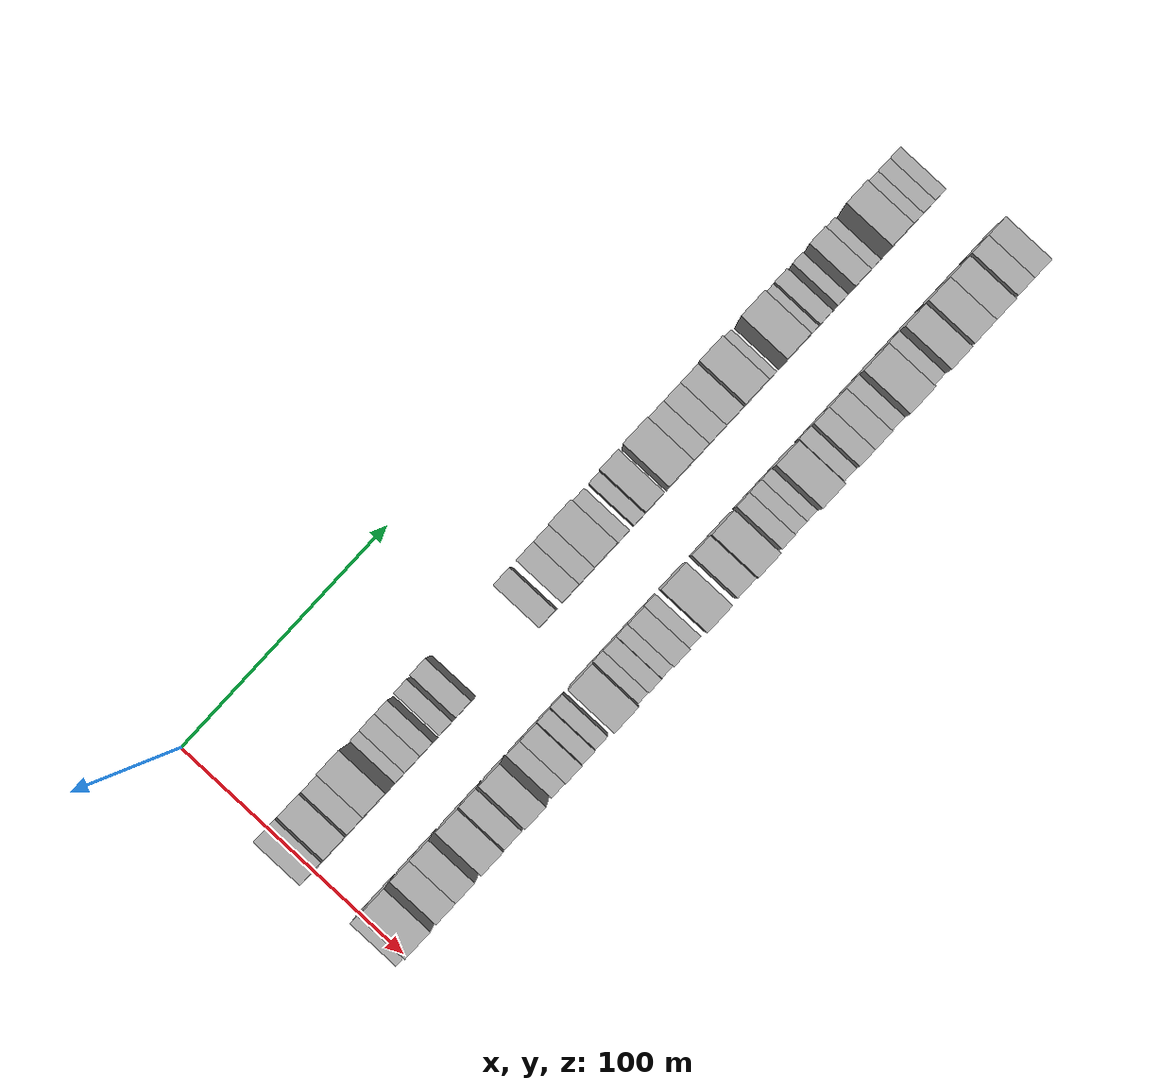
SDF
<sdf version="1.6">
 <world name="default">
  <model name="building_36">
   <static>1</static>
   <pose>50.0000 5.2989 0 0.000000 0.000000 0.000000</pose>
   <link name="link">
    <pose>0 0 12.00 0 0 0</pose>
    <collision name="collision"><geometry><box><size>20.0000 9.8693 24.0000</size></box></geometry></collision>
    <visual name="visual">
     <cast_shadows>0</cast_shadows>
     <geometry><box><size>20.0000 9.8693 24.0000</size></box></geometry>
     <material>
      <script>
       <uri>model://HANNAS_wall/materials/scripts</uri>
       <uri>model://HANNAS_wall/materials/textures</uri>
       <name>vrc/HANNAS_wall</name>
      </script>
     </material>
    </visual>
   </link>
  </model>
  <model name="building_37">
   <static>1</static>
   <pose>50.0000 15.3436 0 0.000000 0.000000 0.000000</pose>
   <link name="link">
    <pose>0 0 10.50 0 0 0</pose>
    <collision name="collision"><geometry><box><size>20.0000 10.2202 21.0000</size></box></geometry></collision>
    <visual name="visual">
     <cast_shadows>0</cast_shadows>
     <geometry><box><size>20.0000 10.2202 21.0000</size></box></geometry>
     <material>
      <script>
       <uri>model://HANNAS_wall/materials/scripts</uri>
       <uri>model://HANNAS_wall/materials/textures</uri>
       <name>vrc/HANNAS_wall</name>
      </script>
     </material>
    </visual>
   </link>
  </model>
  <model name="building_38">
   <static>1</static>
   <pose>50.0000 24.9056 0 0.000000 0.000000 0.000000</pose>
   <link name="link">
    <pose>0 0 9.00 0 0 0</pose>
    <collision name="collision"><geometry><box><size>20.0000 8.9036 18.0000</size></box></geometry></collision>
    <visual name="visual">
     <cast_shadows>0</cast_shadows>
     <geometry><box><size>20.0000 8.9036 18.0000</size></box></geometry>
     <material>
      <script>
       <uri>model://HANNAS_wall/materials/scripts</uri>
       <uri>model://HANNAS_wall/materials/textures</uri>
       <name>vrc/HANNAS_wall</name>
      </script>
     </material>
    </visual>
   </link>
  </model>
  <model name="building_39">
   <static>1</static>
   <pose>50.0000 34.5835 0 0.000000 0.000000 0.000000</pose>
   <link name="link">
    <pose>0 0 12.00 0 0 0</pose>
    <collision name="collision"><geometry><box><size>20.0000 10.4523 24.0000</size></box></geometry></collision>
    <visual name="visual">
     <cast_shadows>0</cast_shadows>
     <geometry><box><size>20.0000 10.4523 24.0000</size></box></geometry>
     <material>
      <script>
       <uri>model://HANNAS_wall/materials/scripts</uri>
       <uri>model://HANNAS_wall/materials/textures</uri>
       <name>vrc/HANNAS_wall</name>
      </script>
     </material>
    </visual>
   </link>
  </model>
  <model name="building_40">
   <static>1</static>
   <pose>50.0000 44.3643 0 0.000000 0.000000 0.000000</pose>
   <link name="link">
    <pose>0 0 6.00 0 0 0</pose>
    <collision name="collision"><geometry><box><size>20.0000 5.1094 12.0000</size></box></geometry></collision>
    <visual name="visual">
     <cast_shadows>0</cast_shadows>
     <geometry><box><size>20.0000 5.1094 12.0000</size></box></geometry>
     <material>
      <script>
       <uri>model://HANNAS_wall/materials/scripts</uri>
       <uri>model://HANNAS_wall/materials/textures</uri>
       <name>vrc/HANNAS_wall</name>
      </script>
     </material>
    </visual>
   </link>
  </model>
  <model name="building_41">
   <static>1</static>
   <pose>50.0000 50.5406 0 0.000000 0.000000 0.000000</pose>
   <link name="link">
    <pose>0 0 7.50 0 0 0</pose>
    <collision name="collision"><geometry><box><size>20.0000 7.2432 15.0000</size></box></geometry></collision>
    <visual name="visual">
     <cast_shadows>0</cast_shadows>
     <geometry><box><size>20.0000 7.2432 15.0000</size></box></geometry>
     <material>
      <script>
       <uri>model://HANNAS_wall/materials/scripts</uri>
       <uri>model://HANNAS_wall/materials/textures</uri>
       <name>vrc/HANNAS_wall</name>
      </script>
     </material>
    </visual>
   </link>
  </model>
  <model name="building_42">
   <static>1</static>
   <pose>50.0000 57.1868 0 0.000000 0.000000 0.000000</pose>
   <link name="link">
    <pose>0 0 7.50 0 0 0</pose>
    <collision name="collision"><geometry><box><size>20.0000 6.0493 15.0000</size></box></geometry></collision>
    <visual name="visual">
     <cast_shadows>0</cast_shadows>
     <geometry><box><size>20.0000 6.0493 15.0000</size></box></geometry>
     <material>
      <script>
       <uri>model://HANNAS_wall/materials/scripts</uri>
       <uri>model://HANNAS_wall/materials/textures</uri>
       <name>vrc/HANNAS_wall</name>
      </script>
     </material>
    </visual>
   </link>
  </model>
  <model name="building_43">
   <static>1</static>
   <pose>50.0000 66.2984 0 0.000000 0.000000 0.000000</pose>
   <link name="link">
    <pose>0 0 7.50 0 0 0</pose>
    <collision name="collision"><geometry><box><size>20.0000 6.1739 15.0000</size></box></geometry></collision>
    <visual name="visual">
     <cast_shadows>0</cast_shadows>
     <geometry><box><size>20.0000 6.1739 15.0000</size></box></geometry>
     <material>
      <script>
       <uri>model://HANNAS_wall/materials/scripts</uri>
       <uri>model://HANNAS_wall/materials/textures</uri>
       <name>vrc/HANNAS_wall</name>
      </script>
     </material>
    </visual>
   </link>
  </model>
  <model name="building_44">
   <static>1</static>
   <pose>50.0000 75.0308 0 0.000000 0.000000 0.000000</pose>
   <link name="link">
    <pose>0 0 9.00 0 0 0</pose>
    <collision name="collision"><geometry><box><size>20.0000 7.2908 18.0000</size></box></geometry></collision>
    <visual name="visual">
     <cast_shadows>0</cast_shadows>
     <geometry><box><size>20.0000 7.2908 18.0000</size></box></geometry>
     <material>
      <script>
       <uri>model://HANNAS_wall/materials/scripts</uri>
       <uri>model://HANNAS_wall/materials/textures</uri>
       <name>vrc/HANNAS_wall</name>
      </script>
     </material>
    </visual>
   </link>
  </model>
  <model name="building_45">
   <static>1</static>
   <pose>50.0000 114.2790 0 0.000000 0.000000 0.000000</pose>
   <link name="link">
    <pose>0 0 9.00 0 0 0</pose>
    <collision name="collision"><geometry><box><size>20.0000 7.7352 18.0000</size></box></geometry></collision>
    <visual name="visual">
     <cast_shadows>0</cast_shadows>
     <geometry><box><size>20.0000 7.7352 18.0000</size></box></geometry>
     <material>
      <script>
       <uri>model://HANNAS_wall/materials/scripts</uri>
       <uri>model://HANNAS_wall/materials/textures</uri>
       <name>vrc/HANNAS_wall</name>
      </script>
     </material>
    </visual>
   </link>
  </model>
  <model name="building_46">
   <static>1</static>
   <pose>50.0000 125.1960 0 0.000000 0.000000 0.000000</pose>
   <link name="link">
    <pose>0 0 9.00 0 0 0</pose>
    <collision name="collision"><geometry><box><size>20.0000 8.0990 18.0000</size></box></geometry></collision>
    <visual name="visual">
     <cast_shadows>0</cast_shadows>
     <geometry><box><size>20.0000 8.0990 18.0000</size></box></geometry>
     <material>
      <script>
       <uri>model://HANNAS_wall/materials/scripts</uri>
       <uri>model://HANNAS_wall/materials/textures</uri>
       <name>vrc/HANNAS_wall</name>
      </script>
     </material>
    </visual>
   </link>
  </model>
  <model name="building_47">
   <static>1</static>
   <pose>50.0000 132.9051 0 0.000000 0.000000 0.000000</pose>
   <link name="link">
    <pose>0 0 9.00 0 0 0</pose>
    <collision name="collision"><geometry><box><size>20.0000 7.3190 18.0000</size></box></geometry></collision>
    <visual name="visual">
     <cast_shadows>0</cast_shadows>
     <geometry><box><size>20.0000 7.3190 18.0000</size></box></geometry>
     <material>
      <script>
       <uri>model://HANNAS_wall/materials/scripts</uri>
       <uri>model://HANNAS_wall/materials/textures</uri>
       <name>vrc/HANNAS_wall</name>
      </script>
     </material>
    </visual>
   </link>
  </model>
  <model name="building_48">
   <static>1</static>
   <pose>50.0000 141.8747 0 0.000000 0.000000 0.000000</pose>
   <link name="link">
    <pose>0 0 12.00 0 0 0</pose>
    <collision name="collision"><geometry><box><size>20.0000 10.6203 24.0000</size></box></geometry></collision>
    <visual name="visual">
     <cast_shadows>0</cast_shadows>
     <geometry><box><size>20.0000 10.6203 24.0000</size></box></geometry>
     <material>
      <script>
       <uri>model://HANNAS_wall/materials/scripts</uri>
       <uri>model://HANNAS_wall/materials/textures</uri>
       <name>vrc/HANNAS_wall</name>
      </script>
     </material>
    </visual>
   </link>
  </model>
  <model name="building_49">
   <static>1</static>
   <pose>50.0000 150.0842 0 0.000000 0.000000 0.000000</pose>
   <link name="link">
    <pose>0 0 6.00 0 0 0</pose>
    <collision name="collision"><geometry><box><size>20.0000 5.7988 12.0000</size></box></geometry></collision>
    <visual name="visual">
     <cast_shadows>0</cast_shadows>
     <geometry><box><size>20.0000 5.7988 12.0000</size></box></geometry>
     <material>
      <script>
       <uri>model://HANNAS_wall/materials/scripts</uri>
       <uri>model://HANNAS_wall/materials/textures</uri>
       <name>vrc/HANNAS_wall</name>
      </script>
     </material>
    </visual>
   </link>
  </model>
  <model name="building_50">
   <static>1</static>
   <pose>50.0000 157.6282 0 0.000000 0.000000 0.000000</pose>
   <link name="link">
    <pose>0 0 6.00 0 0 0</pose>
    <collision name="collision"><geometry><box><size>20.0000 5.2891 12.0000</size></box></geometry></collision>
    <visual name="visual">
     <cast_shadows>0</cast_shadows>
     <geometry><box><size>20.0000 5.2891 12.0000</size></box></geometry>
     <material>
      <script>
       <uri>model://HANNAS_wall/materials/scripts</uri>
       <uri>model://HANNAS_wall/materials/textures</uri>
       <name>vrc/HANNAS_wall</name>
      </script>
     </material>
    </visual>
   </link>
  </model>
  <model name="building_51">
   <static>1</static>
   <pose>50.0000 164.6378 0 0.000000 0.000000 0.000000</pose>
   <link name="link">
    <pose>0 0 10.50 0 0 0</pose>
    <collision name="collision"><geometry><box><size>20.0000 8.7301 21.0000</size></box></geometry></collision>
    <visual name="visual">
     <cast_shadows>0</cast_shadows>
     <geometry><box><size>20.0000 8.7301 21.0000</size></box></geometry>
     <material>
      <script>
       <uri>model://HANNAS_wall/materials/scripts</uri>
       <uri>model://HANNAS_wall/materials/textures</uri>
       <name>vrc/HANNAS_wall</name>
      </script>
     </material>
    </visual>
   </link>
  </model>
  <model name="building_52">
   <static>1</static>
   <pose>50.0000 176.7647 0 0.000000 0.000000 0.000000</pose>
   <link name="link">
    <pose>0 0 12.00 0 0 0</pose>
    <collision name="collision"><geometry><box><size>20.0000 11.5238 24.0000</size></box></geometry></collision>
    <visual name="visual">
     <cast_shadows>0</cast_shadows>
     <geometry><box><size>20.0000 11.5238 24.0000</size></box></geometry>
     <material>
      <script>
       <uri>model://HANNAS_wall/materials/scripts</uri>
       <uri>model://HANNAS_wall/materials/textures</uri>
       <name>vrc/HANNAS_wall</name>
      </script>
     </material>
    </visual>
   </link>
  </model>
  <model name="building_53">
   <static>1</static>
   <pose>50.0000 186.3840 0 0.000000 0.000000 0.000000</pose>
   <link name="link">
    <pose>0 0 9.00 0 0 0</pose>
    <collision name="collision"><geometry><box><size>20.0000 7.7149 18.0000</size></box></geometry></collision>
    <visual name="visual">
     <cast_shadows>0</cast_shadows>
     <geometry><box><size>20.0000 7.7149 18.0000</size></box></geometry>
     <material>
      <script>
       <uri>model://HANNAS_wall/materials/scripts</uri>
       <uri>model://HANNAS_wall/materials/textures</uri>
       <name>vrc/HANNAS_wall</name>
      </script>
     </material>
    </visual>
   </link>
  </model>
  <model name="building_54">
   <static>1</static>
   <pose>50.0000 194.2347 0 0.000000 0.000000 0.000000</pose>
   <link name="link">
    <pose>0 0 9.00 0 0 0</pose>
    <collision name="collision"><geometry><box><size>20.0000 7.9865 18.0000</size></box></geometry></collision>
    <visual name="visual">
     <cast_shadows>0</cast_shadows>
     <geometry><box><size>20.0000 7.9865 18.0000</size></box></geometry>
     <material>
      <script>
       <uri>model://HANNAS_wall/materials/scripts</uri>
       <uri>model://HANNAS_wall/materials/textures</uri>
       <name>vrc/HANNAS_wall</name>
      </script>
     </material>
    </visual>
   </link>
  </model>
  <model name="building_55">
   <static>1</static>
   <pose>50.0000 202.3265 0 0.000000 0.000000 0.000000</pose>
   <link name="link">
    <pose>0 0 9.00 0 0 0</pose>
    <collision name="collision"><geometry><box><size>20.0000 8.1970 18.0000</size></box></geometry></collision>
    <visual name="visual">
     <cast_shadows>0</cast_shadows>
     <geometry><box><size>20.0000 8.1970 18.0000</size></box></geometry>
     <material>
      <script>
       <uri>model://HANNAS_wall/materials/scripts</uri>
       <uri>model://HANNAS_wall/materials/textures</uri>
       <name>vrc/HANNAS_wall</name>
      </script>
     </material>
    </visual>
   </link>
  </model>
  <model name="building_56">
   <static>1</static>
   <pose>50.0000 211.8635 0 0.000000 0.000000 0.000000</pose>
   <link name="link">
    <pose>0 0 12.00 0 0 0</pose>
    <collision name="collision"><geometry><box><size>20.0000 10.8770 24.0000</size></box></geometry></collision>
    <visual name="visual">
     <cast_shadows>0</cast_shadows>
     <geometry><box><size>20.0000 10.8770 24.0000</size></box></geometry>
     <material>
      <script>
       <uri>model://HANNAS_wall/materials/scripts</uri>
       <uri>model://HANNAS_wall/materials/textures</uri>
       <name>vrc/HANNAS_wall</name>
      </script>
     </material>
    </visual>
   </link>
  </model>
  <model name="building_57">
   <static>1</static>
   <pose>50.0000 219.9819 0 0.000000 0.000000 0.000000</pose>
   <link name="link">
    <pose>0 0 6.00 0 0 0</pose>
    <collision name="collision"><geometry><box><size>20.0000 5.3598 12.0000</size></box></geometry></collision>
    <visual name="visual">
     <cast_shadows>0</cast_shadows>
     <geometry><box><size>20.0000 5.3598 12.0000</size></box></geometry>
     <material>
      <script>
       <uri>model://HANNAS_wall/materials/scripts</uri>
       <uri>model://HANNAS_wall/materials/textures</uri>
       <name>vrc/HANNAS_wall</name>
      </script>
     </material>
    </visual>
   </link>
  </model>
  <model name="building_58">
   <static>1</static>
   <pose>50.0000 231.2305 0 0.000000 0.000000 0.000000</pose>
   <link name="link">
    <pose>0 0 12.00 0 0 0</pose>
    <collision name="collision"><geometry><box><size>20.0000 11.1373 24.0000</size></box></geometry></collision>
    <visual name="visual">
     <cast_shadows>0</cast_shadows>
     <geometry><box><size>20.0000 11.1373 24.0000</size></box></geometry>
     <material>
      <script>
       <uri>model://HANNAS_wall/materials/scripts</uri>
       <uri>model://HANNAS_wall/materials/textures</uri>
       <name>vrc/HANNAS_wall</name>
      </script>
     </material>
    </visual>
   </link>
  </model>
  <model name="building_59">
   <static>1</static>
   <pose>50.0000 239.7398 0 0.000000 0.000000 0.000000</pose>
   <link name="link">
    <pose>0 0 6.00 0 0 0</pose>
    <collision name="collision"><geometry><box><size>20.0000 5.8813 12.0000</size></box></geometry></collision>
    <visual name="visual">
     <cast_shadows>0</cast_shadows>
     <geometry><box><size>20.0000 5.8813 12.0000</size></box></geometry>
     <material>
      <script>
       <uri>model://HANNAS_wall/materials/scripts</uri>
       <uri>model://HANNAS_wall/materials/textures</uri>
       <name>vrc/HANNAS_wall</name>
      </script>
     </material>
    </visual>
   </link>
  </model>
  <model name="building_60">
   <static>1</static>
   <pose>50.0000 245.6837 0 0.000000 0.000000 0.000000</pose>
   <link name="link">
    <pose>0 0 7.50 0 0 0</pose>
    <collision name="collision"><geometry><box><size>20.0000 6.0066 15.0000</size></box></geometry></collision>
    <visual name="visual">
     <cast_shadows>0</cast_shadows>
     <geometry><box><size>20.0000 6.0066 15.0000</size></box></geometry>
     <material>
      <script>
       <uri>model://HANNAS_wall/materials/scripts</uri>
       <uri>model://HANNAS_wall/materials/textures</uri>
       <name>vrc/HANNAS_wall</name>
      </script>
     </material>
    </visual>
   </link>
  </model>
  <model name="building_61">
   <static>1</static>
   <pose>50.0000 254.1196 0 0.000000 0.000000 0.000000</pose>
   <link name="link">
    <pose>0 0 6.00 0 0 0</pose>
    <collision name="collision"><geometry><box><size>20.0000 4.8652 12.0000</size></box></geometry></collision>
    <visual name="visual">
     <cast_shadows>0</cast_shadows>
     <geometry><box><size>20.0000 4.8652 12.0000</size></box></geometry>
     <material>
      <script>
       <uri>model://HANNAS_wall/materials/scripts</uri>
       <uri>model://HANNAS_wall/materials/textures</uri>
       <name>vrc/HANNAS_wall</name>
      </script>
     </material>
    </visual>
   </link>
  </model>
  <model name="building_62">
   <static>1</static>
   <pose>50.0000 262.2851 0 0.000000 0.000000 0.000000</pose>
   <link name="link">
    <pose>0 0 9.00 0 0 0</pose>
    <collision name="collision"><geometry><box><size>20.0000 7.4657 18.0000</size></box></geometry></collision>
    <visual name="visual">
     <cast_shadows>0</cast_shadows>
     <geometry><box><size>20.0000 7.4657 18.0000</size></box></geometry>
     <material>
      <script>
       <uri>model://HANNAS_wall/materials/scripts</uri>
       <uri>model://HANNAS_wall/materials/textures</uri>
       <name>vrc/HANNAS_wall</name>
      </script>
     </material>
    </visual>
   </link>
  </model>
  <model name="building_63">
   <static>1</static>
   <pose>50.0000 269.0076 0 0.000000 0.000000 0.000000</pose>
   <link name="link">
    <pose>0 0 6.00 0 0 0</pose>
    <collision name="collision"><geometry><box><size>20.0000 5.9794 12.0000</size></box></geometry></collision>
    <visual name="visual">
     <cast_shadows>0</cast_shadows>
     <geometry><box><size>20.0000 5.9794 12.0000</size></box></geometry>
     <material>
      <script>
       <uri>model://HANNAS_wall/materials/scripts</uri>
       <uri>model://HANNAS_wall/materials/textures</uri>
       <name>vrc/HANNAS_wall</name>
      </script>
     </material>
    </visual>
   </link>
  </model>
  <model name="building_64">
   <static>1</static>
   <pose>50.0000 279.9624 0 0.000000 0.000000 0.000000</pose>
   <link name="link">
    <pose>0 0 10.50 0 0 0</pose>
    <collision name="collision"><geometry><box><size>20.0000 9.9301 21.0000</size></box></geometry></collision>
    <visual name="visual">
     <cast_shadows>0</cast_shadows>
     <geometry><box><size>20.0000 9.9301 21.0000</size></box></geometry>
     <material>
      <script>
       <uri>model://HANNAS_wall/materials/scripts</uri>
       <uri>model://HANNAS_wall/materials/textures</uri>
       <name>vrc/HANNAS_wall</name>
      </script>
     </material>
    </visual>
   </link>
  </model>
  <model name="building_65">
   <static>1</static>
   <pose>50.0000 289.5645 0 0.000000 0.000000 0.000000</pose>
   <link name="link">
    <pose>0 0 6.00 0 0 0</pose>
    <collision name="collision"><geometry><box><size>20.0000 5.2741 12.0000</size></box></geometry></collision>
    <visual name="visual">
     <cast_shadows>0</cast_shadows>
     <geometry><box><size>20.0000 5.2741 12.0000</size></box></geometry>
     <material>
      <script>
       <uri>model://HANNAS_wall/materials/scripts</uri>
       <uri>model://HANNAS_wall/materials/textures</uri>
       <name>vrc/HANNAS_wall</name>
      </script>
     </material>
    </visual>
   </link>
  </model>
  <model name="building_66">
   <static>1</static>
   <pose>50.0000 295.0263 0 0.000000 0.000000 0.000000</pose>
   <link name="link">
    <pose>0 0 6.00 0 0 0</pose>
    <collision name="collision"><geometry><box><size>20.0000 5.6495 12.0000</size></box></geometry></collision>
    <visual name="visual">
     <cast_shadows>0</cast_shadows>
     <geometry><box><size>20.0000 5.6495 12.0000</size></box></geometry>
     <material>
      <script>
       <uri>model://HANNAS_wall/materials/scripts</uri>
       <uri>model://HANNAS_wall/materials/textures</uri>
       <name>vrc/HANNAS_wall</name>
      </script>
     </material>
    </visual>
   </link>
  </model>
  <model name="building_67">
   <static>1</static>
   <pose>50.0000 300.3409 0 0.000000 0.000000 0.000000</pose>
   <link name="link">
    <pose>0 0 6.00 0 0 0</pose>
    <collision name="collision"><geometry><box><size>20.0000 4.9796 12.0000</size></box></geometry></collision>
    <visual name="visual">
     <cast_shadows>0</cast_shadows>
     <geometry><box><size>20.0000 4.9796 12.0000</size></box></geometry>
     <material>
      <script>
       <uri>model://HANNAS_wall/materials/scripts</uri>
       <uri>model://HANNAS_wall/materials/textures</uri>
       <name>vrc/HANNAS_wall</name>
      </script>
     </material>
    </visual>
   </link>
  </model>
  <model name="building_99">
   <static>1</static>
   <pose>90.0000 2.6987 0 0.000000 0.000000 0.000000</pose>
   <link name="link">
    <pose>0 0 7.50 0 0 0</pose>
    <collision name="collision"><geometry><box><size>20.0000 6.0390 15.0000</size></box></geometry></collision>
    <visual name="visual">
     <cast_shadows>0</cast_shadows>
     <geometry><box><size>20.0000 6.0390 15.0000</size></box></geometry>
     <material>
      <script>
       <uri>model://HANNAS_wall/materials/scripts</uri>
       <uri>model://HANNAS_wall/materials/textures</uri>
       <name>vrc/HANNAS_wall</name>
      </script>
     </material>
    </visual>
   </link>
  </model>
  <model name="building_100">
   <static>1</static>
   <pose>90.0000 11.6508 0 0.000000 0.000000 0.000000</pose>
   <link name="link">
    <pose>0 0 12.00 0 0 0</pose>
    <collision name="collision"><geometry><box><size>20.0000 11.8654 24.0000</size></box></geometry></collision>
    <visual name="visual">
     <cast_shadows>0</cast_shadows>
     <geometry><box><size>20.0000 11.8654 24.0000</size></box></geometry>
     <material>
      <script>
       <uri>model://HANNAS_wall/materials/scripts</uri>
       <uri>model://HANNAS_wall/materials/textures</uri>
       <name>vrc/HANNAS_wall</name>
      </script>
     </material>
    </visual>
   </link>
  </model>
  <model name="building_101">
   <static>1</static>
   <pose>90.0000 24.1338 0 0.000000 0.000000 0.000000</pose>
   <link name="link">
    <pose>0 0 10.50 0 0 0</pose>
    <collision name="collision"><geometry><box><size>20.0000 9.1005 21.0000</size></box></geometry></collision>
    <visual name="visual">
     <cast_shadows>0</cast_shadows>
     <geometry><box><size>20.0000 9.1005 21.0000</size></box></geometry>
     <material>
      <script>
       <uri>model://HANNAS_wall/materials/scripts</uri>
       <uri>model://HANNAS_wall/materials/textures</uri>
       <name>vrc/HANNAS_wall</name>
      </script>
     </material>
    </visual>
   </link>
  </model>
  <model name="building_102">
   <static>1</static>
   <pose>90.0000 33.1468 0 0.000000 0.000000 0.000000</pose>
   <link name="link">
    <pose>0 0 10.50 0 0 0</pose>
    <collision name="collision"><geometry><box><size>20.0000 8.9257 21.0000</size></box></geometry></collision>
    <visual name="visual">
     <cast_shadows>0</cast_shadows>
     <geometry><box><size>20.0000 8.9257 21.0000</size></box></geometry>
     <material>
      <script>
       <uri>model://HANNAS_wall/materials/scripts</uri>
       <uri>model://HANNAS_wall/materials/textures</uri>
       <name>vrc/HANNAS_wall</name>
      </script>
     </material>
    </visual>
   </link>
  </model>
  <model name="building_103">
   <static>1</static>
   <pose>90.0000 45.8174 0 0.000000 0.000000 0.000000</pose>
   <link name="link">
    <pose>0 0 10.50 0 0 0</pose>
    <collision name="collision"><geometry><box><size>20.0000 10.4154 21.0000</size></box></geometry></collision>
    <visual name="visual">
     <cast_shadows>0</cast_shadows>
     <geometry><box><size>20.0000 10.4154 21.0000</size></box></geometry>
     <material>
      <script>
       <uri>model://HANNAS_wall/materials/scripts</uri>
       <uri>model://HANNAS_wall/materials/textures</uri>
       <name>vrc/HANNAS_wall</name>
      </script>
     </material>
    </visual>
   </link>
  </model>
  <model name="building_104">
   <static>1</static>
   <pose>90.0000 55.1356 0 0.000000 0.000000 0.000000</pose>
   <link name="link">
    <pose>0 0 9.00 0 0 0</pose>
    <collision name="collision"><geometry><box><size>20.0000 8.2211 18.0000</size></box></geometry></collision>
    <visual name="visual">
     <cast_shadows>0</cast_shadows>
     <geometry><box><size>20.0000 8.2211 18.0000</size></box></geometry>
     <material>
      <script>
       <uri>model://HANNAS_wall/materials/scripts</uri>
       <uri>model://HANNAS_wall/materials/textures</uri>
       <name>vrc/HANNAS_wall</name>
      </script>
     </material>
    </visual>
   </link>
  </model>
  <model name="building_105">
   <static>1</static>
   <pose>90.0000 66.1166 0 0.000000 0.000000 0.000000</pose>
   <link name="link">
    <pose>0 0 12.00 0 0 0</pose>
    <collision name="collision"><geometry><box><size>20.0000 9.7410 24.0000</size></box></geometry></collision>
    <visual name="visual">
     <cast_shadows>0</cast_shadows>
     <geometry><box><size>20.0000 9.7410 24.0000</size></box></geometry>
     <material>
      <script>
       <uri>model://HANNAS_wall/materials/scripts</uri>
       <uri>model://HANNAS_wall/materials/textures</uri>
       <name>vrc/HANNAS_wall</name>
      </script>
     </material>
    </visual>
   </link>
  </model>
  <model name="building_106">
   <static>1</static>
   <pose>90.0000 76.3858 0 0.000000 0.000000 0.000000</pose>
   <link name="link">
    <pose>0 0 7.50 0 0 0</pose>
    <collision name="collision"><geometry><box><size>20.0000 6.7973 15.0000</size></box></geometry></collision>
    <visual name="visual">
     <cast_shadows>0</cast_shadows>
     <geometry><box><size>20.0000 6.7973 15.0000</size></box></geometry>
     <material>
      <script>
       <uri>model://HANNAS_wall/materials/scripts</uri>
       <uri>model://HANNAS_wall/materials/textures</uri>
       <name>vrc/HANNAS_wall</name>
      </script>
     </material>
    </visual>
   </link>
  </model>
  <model name="building_107">
   <static>1</static>
   <pose>90.0000 83.6716 0 0.000000 0.000000 0.000000</pose>
   <link name="link">
    <pose>0 0 9.00 0 0 0</pose>
    <collision name="collision"><geometry><box><size>20.0000 7.7745 18.0000</size></box></geometry></collision>
    <visual name="visual">
     <cast_shadows>0</cast_shadows>
     <geometry><box><size>20.0000 7.7745 18.0000</size></box></geometry>
     <material>
      <script>
       <uri>model://HANNAS_wall/materials/scripts</uri>
       <uri>model://HANNAS_wall/materials/textures</uri>
       <name>vrc/HANNAS_wall</name>
      </script>
     </material>
    </visual>
   </link>
  </model>
  <model name="building_108">
   <static>1</static>
   <pose>90.0000 90.5907 0 0.000000 0.000000 0.000000</pose>
   <link name="link">
    <pose>0 0 7.50 0 0 0</pose>
    <collision name="collision"><geometry><box><size>20.0000 6.0637 15.0000</size></box></geometry></collision>
    <visual name="visual">
     <cast_shadows>0</cast_shadows>
     <geometry><box><size>20.0000 6.0637 15.0000</size></box></geometry>
     <material>
      <script>
       <uri>model://HANNAS_wall/materials/scripts</uri>
       <uri>model://HANNAS_wall/materials/textures</uri>
       <name>vrc/HANNAS_wall</name>
      </script>
     </material>
    </visual>
   </link>
  </model>
  <model name="building_109">
   <static>1</static>
   <pose>90.0000 96.5604 0 0.000000 0.000000 0.000000</pose>
   <link name="link">
    <pose>0 0 6.00 0 0 0</pose>
    <collision name="collision"><geometry><box><size>20.0000 5.8756 12.0000</size></box></geometry></collision>
    <visual name="visual">
     <cast_shadows>0</cast_shadows>
     <geometry><box><size>20.0000 5.8756 12.0000</size></box></geometry>
     <material>
      <script>
       <uri>model://HANNAS_wall/materials/scripts</uri>
       <uri>model://HANNAS_wall/materials/textures</uri>
       <name>vrc/HANNAS_wall</name>
      </script>
     </material>
    </visual>
   </link>
  </model>
  <model name="building_110">
   <static>1</static>
   <pose>90.0000 108.1608 0 0.000000 0.000000 0.000000</pose>
   <link name="link">
    <pose>0 0 12.00 0 0 0</pose>
    <collision name="collision"><geometry><box><size>20.0000 11.3252 24.0000</size></box></geometry></collision>
    <visual name="visual">
     <cast_shadows>0</cast_shadows>
     <geometry><box><size>20.0000 11.3252 24.0000</size></box></geometry>
     <material>
      <script>
       <uri>model://HANNAS_wall/materials/scripts</uri>
       <uri>model://HANNAS_wall/materials/textures</uri>
       <name>vrc/HANNAS_wall</name>
      </script>
     </material>
    </visual>
   </link>
  </model>
  <model name="building_111">
   <static>1</static>
   <pose>90.0000 116.3234 0 0.000000 0.000000 0.000000</pose>
   <link name="link">
    <pose>0 0 6.00 0 0 0</pose>
    <collision name="collision"><geometry><box><size>20.0000 5.0000 12.0000</size></box></geometry></collision>
    <visual name="visual">
     <cast_shadows>0</cast_shadows>
     <geometry><box><size>20.0000 5.0000 12.0000</size></box></geometry>
     <material>
      <script>
       <uri>model://HANNAS_wall/materials/scripts</uri>
       <uri>model://HANNAS_wall/materials/textures</uri>
       <name>vrc/HANNAS_wall</name>
      </script>
     </material>
    </visual>
   </link>
  </model>
  <model name="building_112">
   <static>1</static>
   <pose>90.0000 121.8997 0 0.000000 0.000000 0.000000</pose>
   <link name="link">
    <pose>0 0 7.50 0 0 0</pose>
    <collision name="collision"><geometry><box><size>20.0000 6.1525 15.0000</size></box></geometry></collision>
    <visual name="visual">
     <cast_shadows>0</cast_shadows>
     <geometry><box><size>20.0000 6.1525 15.0000</size></box></geometry>
     <material>
      <script>
       <uri>model://HANNAS_wall/materials/scripts</uri>
       <uri>model://HANNAS_wall/materials/textures</uri>
       <name>vrc/HANNAS_wall</name>
      </script>
     </material>
    </visual>
   </link>
  </model>
  <model name="building_113">
   <static>1</static>
   <pose>90.0000 127.7015 0 0.000000 0.000000 0.000000</pose>
   <link name="link">
    <pose>0 0 6.00 0 0 0</pose>
    <collision name="collision"><geometry><box><size>20.0000 5.4511 12.0000</size></box></geometry></collision>
    <visual name="visual">
     <cast_shadows>0</cast_shadows>
     <geometry><box><size>20.0000 5.4511 12.0000</size></box></geometry>
     <material>
      <script>
       <uri>model://HANNAS_wall/materials/scripts</uri>
       <uri>model://HANNAS_wall/materials/textures</uri>
       <name>vrc/HANNAS_wall</name>
      </script>
     </material>
    </visual>
   </link>
  </model>
  <model name="building_114">
   <static>1</static>
   <pose>90.0000 134.2943 0 0.000000 0.000000 0.000000</pose>
   <link name="link">
    <pose>0 0 9.00 0 0 0</pose>
    <collision name="collision"><geometry><box><size>20.0000 7.7346 18.0000</size></box></geometry></collision>
    <visual name="visual">
     <cast_shadows>0</cast_shadows>
     <geometry><box><size>20.0000 7.7346 18.0000</size></box></geometry>
     <material>
      <script>
       <uri>model://HANNAS_wall/materials/scripts</uri>
       <uri>model://HANNAS_wall/materials/textures</uri>
       <name>vrc/HANNAS_wall</name>
      </script>
     </material>
    </visual>
   </link>
  </model>
  <model name="building_115">
   <static>1</static>
   <pose>90.0000 140.8394 0 0.000000 0.000000 0.000000</pose>
   <link name="link">
    <pose>0 0 6.00 0 0 0</pose>
    <collision name="collision"><geometry><box><size>20.0000 5.3554 12.0000</size></box></geometry></collision>
    <visual name="visual">
     <cast_shadows>0</cast_shadows>
     <geometry><box><size>20.0000 5.3554 12.0000</size></box></geometry>
     <material>
      <script>
       <uri>model://HANNAS_wall/materials/scripts</uri>
       <uri>model://HANNAS_wall/materials/textures</uri>
       <name>vrc/HANNAS_wall</name>
      </script>
     </material>
    </visual>
   </link>
  </model>
  <model name="building_116">
   <static>1</static>
   <pose>90.0000 151.4085 0 0.000000 0.000000 0.000000</pose>
   <link name="link">
    <pose>0 0 12.00 0 0 0</pose>
    <collision name="collision"><geometry><box><size>20.0000 11.7829 24.0000</size></box></geometry></collision>
    <visual name="visual">
     <cast_shadows>0</cast_shadows>
     <geometry><box><size>20.0000 11.7829 24.0000</size></box></geometry>
     <material>
      <script>
       <uri>model://HANNAS_wall/materials/scripts</uri>
       <uri>model://HANNAS_wall/materials/textures</uri>
       <name>vrc/HANNAS_wall</name>
      </script>
     </material>
    </visual>
   </link>
  </model>
  <model name="building_117">
   <static>1</static>
   <pose>90.0000 164.6859 0 0.000000 0.000000 0.000000</pose>
   <link name="link">
    <pose>0 0 9.00 0 0 0</pose>
    <collision name="collision"><geometry><box><size>20.0000 8.7718 18.0000</size></box></geometry></collision>
    <visual name="visual">
     <cast_shadows>0</cast_shadows>
     <geometry><box><size>20.0000 8.7718 18.0000</size></box></geometry>
     <material>
      <script>
       <uri>model://HANNAS_wall/materials/scripts</uri>
       <uri>model://HANNAS_wall/materials/textures</uri>
       <name>vrc/HANNAS_wall</name>
      </script>
     </material>
    </visual>
   </link>
  </model>
  <model name="building_118">
   <static>1</static>
   <pose>90.0000 174.3525 0 0.000000 0.000000 0.000000</pose>
   <link name="link">
    <pose>0 0 12.00 0 0 0</pose>
    <collision name="collision"><geometry><box><size>20.0000 10.5615 24.0000</size></box></geometry></collision>
    <visual name="visual">
     <cast_shadows>0</cast_shadows>
     <geometry><box><size>20.0000 10.5615 24.0000</size></box></geometry>
     <material>
      <script>
       <uri>model://HANNAS_wall/materials/scripts</uri>
       <uri>model://HANNAS_wall/materials/textures</uri>
       <name>vrc/HANNAS_wall</name>
      </script>
     </material>
    </visual>
   </link>
  </model>
  <model name="building_119">
   <static>1</static>
   <pose>90.0000 184.7682 0 0.000000 0.000000 0.000000</pose>
   <link name="link">
    <pose>0 0 7.50 0 0 0</pose>
    <collision name="collision"><geometry><box><size>20.0000 6.2699 15.0000</size></box></geometry></collision>
    <visual name="visual">
     <cast_shadows>0</cast_shadows>
     <geometry><box><size>20.0000 6.2699 15.0000</size></box></geometry>
     <material>
      <script>
       <uri>model://HANNAS_wall/materials/scripts</uri>
       <uri>model://HANNAS_wall/materials/textures</uri>
       <name>vrc/HANNAS_wall</name>
      </script>
     </material>
    </visual>
   </link>
  </model>
  <model name="building_120">
   <static>1</static>
   <pose>90.0000 190.8894 0 0.000000 0.000000 0.000000</pose>
   <link name="link">
    <pose>0 0 6.00 0 0 0</pose>
    <collision name="collision"><geometry><box><size>20.0000 5.9726 12.0000</size></box></geometry></collision>
    <visual name="visual">
     <cast_shadows>0</cast_shadows>
     <geometry><box><size>20.0000 5.9726 12.0000</size></box></geometry>
     <material>
      <script>
       <uri>model://HANNAS_wall/materials/scripts</uri>
       <uri>model://HANNAS_wall/materials/textures</uri>
       <name>vrc/HANNAS_wall</name>
      </script>
     </material>
    </visual>
   </link>
  </model>
  <model name="building_121">
   <static>1</static>
   <pose>90.0000 196.3490 0 0.000000 0.000000 0.000000</pose>
   <link name="link">
    <pose>0 0 6.00 0 0 0</pose>
    <collision name="collision"><geometry><box><size>20.0000 4.9467 12.0000</size></box></geometry></collision>
    <visual name="visual">
     <cast_shadows>0</cast_shadows>
     <geometry><box><size>20.0000 4.9467 12.0000</size></box></geometry>
     <material>
      <script>
       <uri>model://HANNAS_wall/materials/scripts</uri>
       <uri>model://HANNAS_wall/materials/textures</uri>
       <name>vrc/HANNAS_wall</name>
      </script>
     </material>
    </visual>
   </link>
  </model>
  <model name="building_122">
   <static>1</static>
   <pose>90.0000 204.1767 0 0.000000 0.000000 0.000000</pose>
   <link name="link">
    <pose>0 0 12.00 0 0 0</pose>
    <collision name="collision"><geometry><box><size>20.0000 10.7087 24.0000</size></box></geometry></collision>
    <visual name="visual">
     <cast_shadows>0</cast_shadows>
     <geometry><box><size>20.0000 10.7087 24.0000</size></box></geometry>
     <material>
      <script>
       <uri>model://HANNAS_wall/materials/scripts</uri>
       <uri>model://HANNAS_wall/materials/textures</uri>
       <name>vrc/HANNAS_wall</name>
      </script>
     </material>
    </visual>
   </link>
  </model>
  <model name="building_123">
   <static>1</static>
   <pose>90.0000 214.4660 0 0.000000 0.000000 0.000000</pose>
   <link name="link">
    <pose>0 0 6.00 0 0 0</pose>
    <collision name="collision"><geometry><box><size>20.0000 5.8700 12.0000</size></box></geometry></collision>
    <visual name="visual">
     <cast_shadows>0</cast_shadows>
     <geometry><box><size>20.0000 5.8700 12.0000</size></box></geometry>
     <material>
      <script>
       <uri>model://HANNAS_wall/materials/scripts</uri>
       <uri>model://HANNAS_wall/materials/textures</uri>
       <name>vrc/HANNAS_wall</name>
      </script>
     </material>
    </visual>
   </link>
  </model>
  <model name="building_124">
   <static>1</static>
   <pose>90.0000 221.0540 0 0.000000 0.000000 0.000000</pose>
   <link name="link">
    <pose>0 0 9.00 0 0 0</pose>
    <collision name="collision"><geometry><box><size>20.0000 7.3060 18.0000</size></box></geometry></collision>
    <visual name="visual">
     <cast_shadows>0</cast_shadows>
     <geometry><box><size>20.0000 7.3060 18.0000</size></box></geometry>
     <material>
      <script>
       <uri>model://HANNAS_wall/materials/scripts</uri>
       <uri>model://HANNAS_wall/materials/textures</uri>
       <name>vrc/HANNAS_wall</name>
      </script>
     </material>
    </visual>
   </link>
  </model>
  <model name="building_125">
   <static>1</static>
   <pose>90.0000 228.7644 0 0.000000 0.000000 0.000000</pose>
   <link name="link">
    <pose>0 0 9.00 0 0 0</pose>
    <collision name="collision"><geometry><box><size>20.0000 8.1148 18.0000</size></box></geometry></collision>
    <visual name="visual">
     <cast_shadows>0</cast_shadows>
     <geometry><box><size>20.0000 8.1148 18.0000</size></box></geometry>
     <material>
      <script>
       <uri>model://HANNAS_wall/materials/scripts</uri>
       <uri>model://HANNAS_wall/materials/textures</uri>
       <name>vrc/HANNAS_wall</name>
      </script>
     </material>
    </visual>
   </link>
  </model>
  <model name="building_126">
   <static>1</static>
   <pose>90.0000 236.0799 0 0.000000 0.000000 0.000000</pose>
   <link name="link">
    <pose>0 0 7.50 0 0 0</pose>
    <collision name="collision"><geometry><box><size>20.0000 6.5163 15.0000</size></box></geometry></collision>
    <visual name="visual">
     <cast_shadows>0</cast_shadows>
     <geometry><box><size>20.0000 6.5163 15.0000</size></box></geometry>
     <material>
      <script>
       <uri>model://HANNAS_wall/materials/scripts</uri>
       <uri>model://HANNAS_wall/materials/textures</uri>
       <name>vrc/HANNAS_wall</name>
      </script>
     </material>
    </visual>
   </link>
  </model>
  <model name="building_127">
   <static>1</static>
   <pose>90.0000 245.2194 0 0.000000 0.000000 0.000000</pose>
   <link name="link">
    <pose>0 0 12.00 0 0 0</pose>
    <collision name="collision"><geometry><box><size>20.0000 11.7628 24.0000</size></box></geometry></collision>
    <visual name="visual">
     <cast_shadows>0</cast_shadows>
     <geometry><box><size>20.0000 11.7628 24.0000</size></box></geometry>
     <material>
      <script>
       <uri>model://HANNAS_wall/materials/scripts</uri>
       <uri>model://HANNAS_wall/materials/textures</uri>
       <name>vrc/HANNAS_wall</name>
      </script>
     </material>
    </visual>
   </link>
  </model>
  <model name="building_128">
   <static>1</static>
   <pose>90.0000 254.7573 0 0.000000 0.000000 0.000000</pose>
   <link name="link">
    <pose>0 0 7.50 0 0 0</pose>
    <collision name="collision"><geometry><box><size>20.0000 7.3130 15.0000</size></box></geometry></collision>
    <visual name="visual">
     <cast_shadows>0</cast_shadows>
     <geometry><box><size>20.0000 7.3130 15.0000</size></box></geometry>
     <material>
      <script>
       <uri>model://HANNAS_wall/materials/scripts</uri>
       <uri>model://HANNAS_wall/materials/textures</uri>
       <name>vrc/HANNAS_wall</name>
      </script>
     </material>
    </visual>
   </link>
  </model>
  <model name="building_129">
   <static>1</static>
   <pose>90.0000 263.2619 0 0.000000 0.000000 0.000000</pose>
   <link name="link">
    <pose>0 0 12.00 0 0 0</pose>
    <collision name="collision"><geometry><box><size>20.0000 9.6961 24.0000</size></box></geometry></collision>
    <visual name="visual">
     <cast_shadows>0</cast_shadows>
     <geometry><box><size>20.0000 9.6961 24.0000</size></box></geometry>
     <material>
      <script>
       <uri>model://HANNAS_wall/materials/scripts</uri>
       <uri>model://HANNAS_wall/materials/textures</uri>
       <name>vrc/HANNAS_wall</name>
      </script>
     </material>
    </visual>
   </link>
  </model>
  <model name="building_130">
   <static>1</static>
   <pose>90.0000 275.2382 0 0.000000 0.000000 0.000000</pose>
   <link name="link">
    <pose>0 0 10.50 0 0 0</pose>
    <collision name="collision"><geometry><box><size>20.0000 10.2564 21.0000</size></box></geometry></collision>
    <visual name="visual">
     <cast_shadows>0</cast_shadows>
     <geometry><box><size>20.0000 10.2564 21.0000</size></box></geometry>
     <material>
      <script>
       <uri>model://HANNAS_wall/materials/scripts</uri>
       <uri>model://HANNAS_wall/materials/textures</uri>
       <name>vrc/HANNAS_wall</name>
      </script>
     </material>
    </visual>
   </link>
  </model>
  <model name="building_131">
   <static>1</static>
   <pose>90.0000 284.9227 0 0.000000 0.000000 0.000000</pose>
   <link name="link">
    <pose>0 0 10.50 0 0 0</pose>
    <collision name="collision"><geometry><box><size>20.0000 9.1127 21.0000</size></box></geometry></collision>
    <visual name="visual">
     <cast_shadows>0</cast_shadows>
     <geometry><box><size>20.0000 9.1127 21.0000</size></box></geometry>
     <material>
      <script>
       <uri>model://HANNAS_wall/materials/scripts</uri>
       <uri>model://HANNAS_wall/materials/textures</uri>
       <name>vrc/HANNAS_wall</name>
      </script>
     </material>
    </visual>
   </link>
  </model>
  <model name="building_132">
   <static>1</static>
   <pose>90.0000 295.3713 0 0.000000 0.000000 0.000000</pose>
   <link name="link">
    <pose>0 0 9.00 0 0 0</pose>
    <collision name="collision"><geometry><box><size>20.0000 7.7845 18.0000</size></box></geometry></collision>
    <visual name="visual">
     <cast_shadows>0</cast_shadows>
     <geometry><box><size>20.0000 7.7845 18.0000</size></box></geometry>
     <material>
      <script>
       <uri>model://HANNAS_wall/materials/scripts</uri>
       <uri>model://HANNAS_wall/materials/textures</uri>
       <name>vrc/HANNAS_wall</name>
      </script>
     </material>
    </visual>
   </link>
  </model>
  <model name="building_133">
   <static>1</static>
   <pose>90.0000 303.2773 0 0.000000 0.000000 0.000000</pose>
   <link name="link">
    <pose>0 0 9.00 0 0 0</pose>
    <collision name="collision"><geometry><box><size>20.0000 8.0276 18.0000</size></box></geometry></collision>
    <visual name="visual">
     <cast_shadows>0</cast_shadows>
     <geometry><box><size>20.0000 8.0276 18.0000</size></box></geometry>
     <material>
      <script>
       <uri>model://HANNAS_wall/materials/scripts</uri>
       <uri>model://HANNAS_wall/materials/textures</uri>
       <name>vrc/HANNAS_wall</name>
      </script>
     </material>
    </visual>
   </link>
  </model>
 </world>
</sdf>
